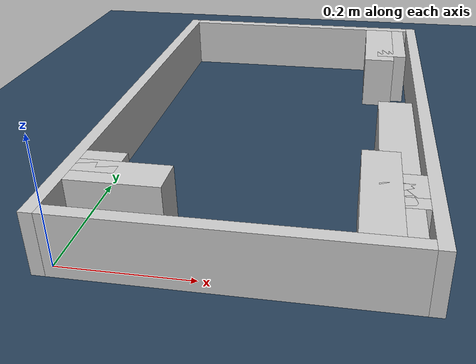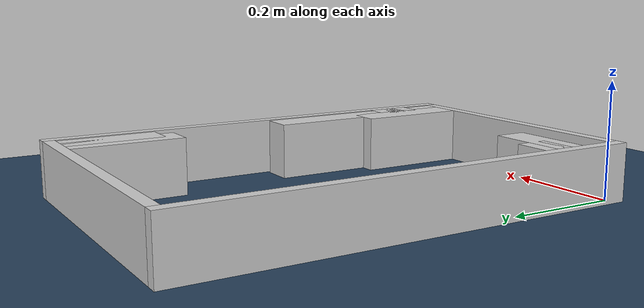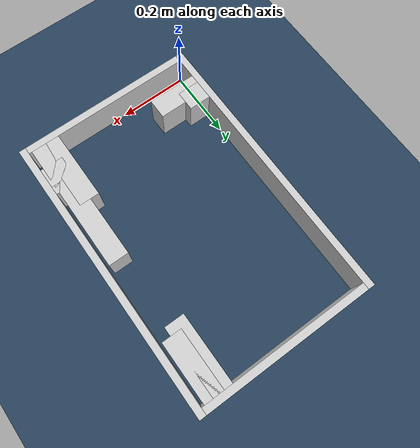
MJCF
<?xml version="1.0" ?>
<mujoco model="generated_real_template">
  <compiler angle="degree"/>
  <option timestep="0.002" integrator="implicitfast" iterations="100" cone="elliptic"/>
  <default>
    <geom density="1"/>
  </default>
  <asset>
    <texture builtin="gradient" height="3072" rgb1="0.3 0.5 0.7" rgb2="0 0 0" type="skybox" width="512"/>
    <texture builtin="checker" height="300" mark="edge" markrgb="0.8 0.8 0.8" name="groundplane" rgb1="0.2 0.3 0.4" rgb2="0.1 0.2 0.3" type="2d" width="300"/>
    <material name="groundplane" reflectance="0.2" texrepeat="5 5" texture="groundplane" texuniform="true"/>
  </asset>
  <worldbody>
    <light dir="0 0 -1" directional="true" pos="0 0 1.5"/>
    <geom name="floor" type="plane" condim="4" friction="0.5 0.005 0.001" material="groundplane" size="0 0 0.05"/>
    <body name="walls">
      <geom name="wall_boundary_left" type="box" condim="4" friction="1.0 0.005 0.0001" rgba="0.8 0.8 0.8 1" pos="-0.010000 0.387500 0.050000" euler="0 0 0.000000" size="0.010000 0.407500 0.050000"/>
      <geom name="wall_boundary_right" type="box" condim="4" friction="1.0 0.005 0.0001" rgba="0.8 0.8 0.8 1" pos="0.500000 0.387500 0.050000" euler="0 0 0.000000" size="0.010000 0.407500 0.050000"/>
      <geom name="wall_boundary_bottom" type="box" condim="4" friction="1.0 0.005 0.0001" rgba="0.8 0.8 0.8 1" pos="0.245000 -0.010000 0.050000" euler="0 0 0.000000" size="0.245000 0.010000 0.050000"/>
      <geom name="wall_boundary_top" type="box" condim="4" friction="1.0 0.005 0.0001" rgba="0.8 0.8 0.8 1" pos="0.245000 0.785000 0.050000" euler="0 0 0.000000" size="0.245000 0.010000 0.050000"/>
      <geom name="wall_inner_1_1" type="box" condim="4" friction="1.0 0.005 0.0001" rgba="0.8 0.8 0.8 1" pos="0.428179 0.100827 0.050000" euler="0 0 90.000000" size="0.100827 0.028500 0.050000"/>
      <geom name="wall_inner_1_2" type="box" condim="4" friction="1.0 0.005 0.0001" rgba="0.8 0.8 0.8 1" pos="0.428179 0.676990 0.050000" euler="0 0 90.000000" size="0.098010 0.028500 0.050000"/>
      <geom name="wall_inner_2_1" type="box" condim="4" friction="1.0 0.005 0.0001" rgba="0.8 0.8 0.8 1" pos="0.069711 0.087649 0.050000" euler="0 0 0.000000" size="0.069711 0.028500 0.050000"/>
      <geom name="wall_inner_2_2" type="box" condim="4" friction="1.0 0.005 0.0001" rgba="0.8 0.8 0.8 1" pos="0.457224 0.087649 0.050000" euler="0 0 0.000000" size="0.032776 0.028500 0.050000"/>
      <geom name="wall_inner_3_1" type="box" condim="4" friction="1.0 0.005 0.0001" rgba="0.8 0.8 0.8 1" pos="0.031552 0.112410 0.050000" euler="0 0 0.000000" size="0.031552 0.028500 0.050000"/>
      <geom name="wall_inner_3_2" type="box" condim="4" friction="1.0 0.005 0.0001" rgba="0.8 0.8 0.8 1" pos="0.461407 0.112410 0.050000" euler="0 0 0.000000" size="0.028593 0.028500 0.050000"/>
      <geom name="wall_inner_4_1" type="box" condim="4" friction="1.0 0.005 0.0001" rgba="0.8 0.8 0.8 1" pos="0.453387 0.188636 0.050000" euler="0 0 90.000000" size="0.188636 0.028500 0.050000"/>
      <geom name="wall_inner_4_2" type="box" condim="4" friction="1.0 0.005 0.0001" rgba="0.8 0.8 0.8 1" pos="0.453387 0.689629 0.050000" euler="0 0 90.000000" size="0.085371 0.028500 0.050000"/>
    </body>
  </worldbody>
</mujoco>
